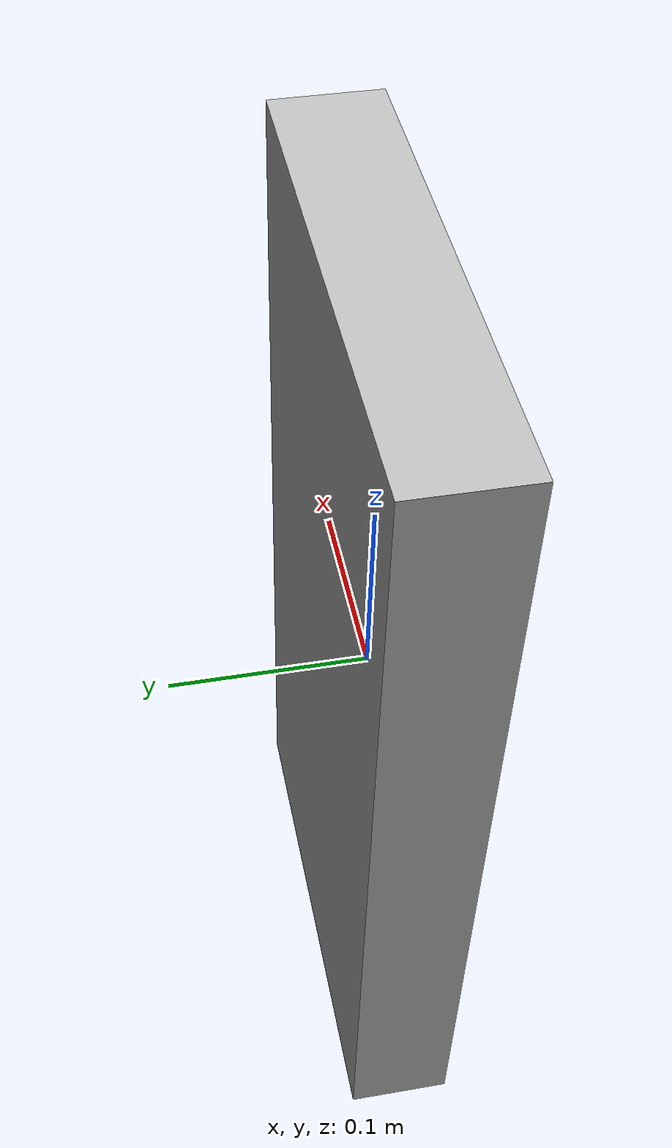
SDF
<?xml version="1.0" ?>
<sdf version="1.5">
  <model name="Giraffe">
    <static>true</static>
    <link name="link">
      <pose>0 0 0 0 0 0</pose>
      <collision name="collision">
        <geometry>
          <box>
            <size>.2543 0.053 .465</size>
          </box>
        </geometry>
      </collision>
      <visual name="visual">
        <cast_shadows>false</cast_shadows>
        <geometry>
          <box>
            <size>.2543 0.053 .465</size>
          </box>
        </geometry>
        <material>
          <script>
            <uri>model://Giraffe/materials/scripts</uri>
            <uri>model://Giraffe/materials/textures</uri>
            <name>vrc/Giraffe</name>
          </script>
        </material>
      </visual>
    </link>
  </model>
</sdf>
